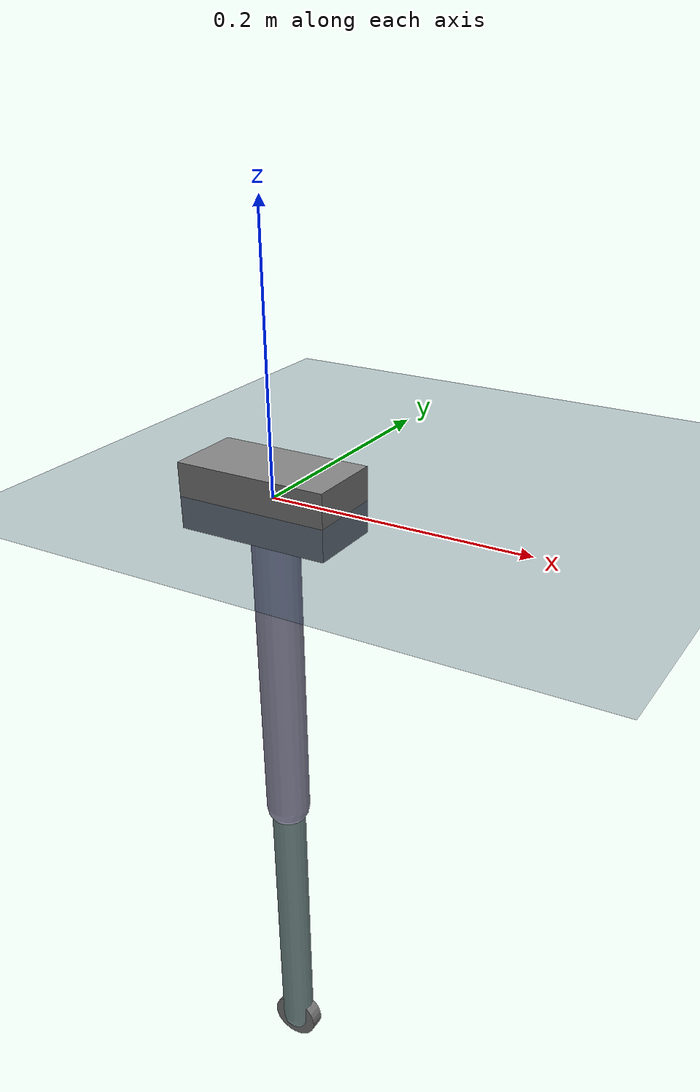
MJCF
<mujoco model="g12_iter38_11d">
<option cone="elliptic" impratio="100" gravity="0 0 -9.81" timestep="0.0005" integrator="RK4"/>
<default><default class="leg">
  <geom friction="1.0 0.02 0.01" margin="0.001" condim="6"/>
  <joint axis="0 1 0"/>
  <motor ctrlrange="-100 100" ctrllimited="false"/>
  <default class="foot">
    <geom type="cylinder" size="0.0210" priority="1"
       solref="0.007085 1.6072" solimp="0.25260 0.72007 0.005409 0.5 2" condim="6"/>
  </default>
</default></default>
<asset>
  <texture type="skybox" builtin="gradient" rgb1="0.3 0.5 0.7" rgb2="0 0 0" width="512" height="3072"/>
  <texture type="2d" name="groundplane" builtin="checker" mark="edge"
           rgb1="0.2 0.3 0.4" rgb2="0.1 0.2 0.3" markrgb="0.8 0.8 0.8" width="300" height="300"/>
  <material name="groundplane" texture="groundplane" texuniform="true" texrepeat="5 5" reflectance="0.2"/>
</asset>
<visual><headlight diffuse="0.6 0.6 0.6" ambient="0.3 0.3 0.3" specular="0 0 0"/></visual>
<worldbody>
  <light pos="0 0 1.5" dir="0 0 -1" directional="true"/>
  <geom name="floor" size="0 0 0.05" type="plane" material="groundplane"
        solref="0.007085 1.6072" solimp="0.25260 0.72007 0.005409 0.5 2"/>
  <body name="base" pos="0 0 0" childclass="leg">
    <joint name="base_z" type="slide" axis="0 0 1" armature="0" damping="0" frictionloss="0"/>
    <inertial pos="0 0 0" mass="1.289665" diaginertia="0.005 0.005 0.005"/>
    <geom type="box" size="0.06 0.03 0.025" rgba="0.5 0.5 0.5 1" contype="0" conaffinity="0"/>
    <body name="thigh" pos="0 0 -0.025">
      <joint name="hip" type="hinge" armature="0.00000000"
             damping="0.44242008" frictionloss="2.04564549"
             stiffness="0.08012000" springref="0"/>
      <inertial pos="0 0 -0.06637" mass="0.99264"
                diaginertia="0.010340 0.010340 0.0002"/>
      <geom type="capsule" size="0.018" fromto="0 0 0 0 0 -0.2500"
            rgba="0.6 0.6 0.7 1" contype="1" conaffinity="1"/>
      <body name="calf" pos="0 0 -0.2500">
        <joint name="knee" type="hinge" armature="0.01983000"
               damping="0.00515781" frictionloss="0.18582999"
               stiffness="1.16157000" springref="0"/>
        <inertial pos="0 0 -0.03661" mass="0.69869"
                  diaginertia="0.002873 0.002873 0.0001"/>
        <geom type="capsule" size="0.014" fromto="0 0 0 0 0 -0.2500"
              rgba="0.5 0.6 0.6 1" contype="1" conaffinity="1"/>
        <geom name="foot" class="foot"
              fromto="0 -0.0065 -0.2500  0 0.0065 -0.2500"
              rgba="0.5 0.5 0.5 1"/>
      </body>
    </body>
  </body>
</worldbody>
<actuator>
  <motor name="hip_act" joint="hip" gear="1"/>
  <motor name="knee_act" joint="knee" gear="1"/>
</actuator>
</mujoco>
